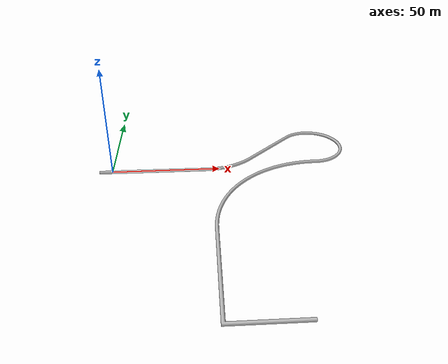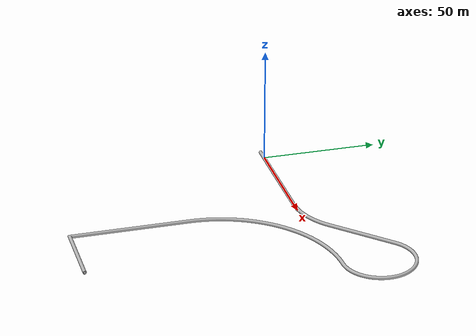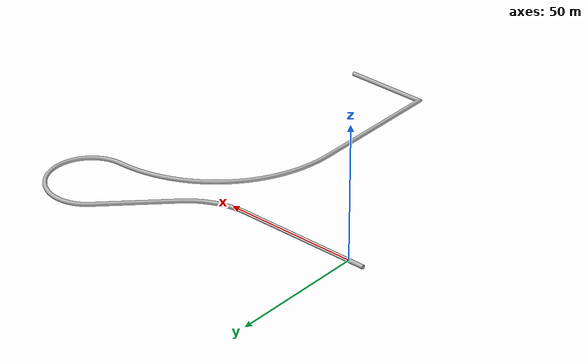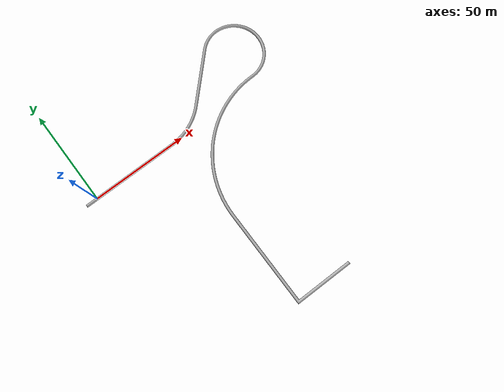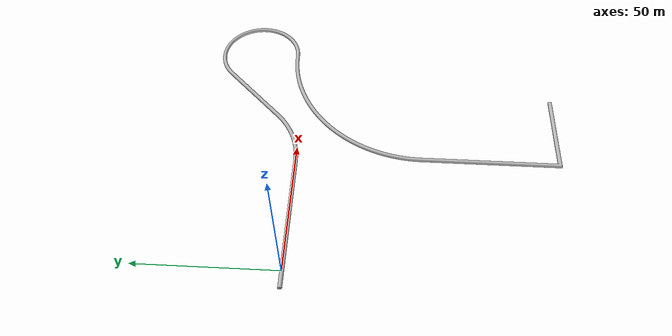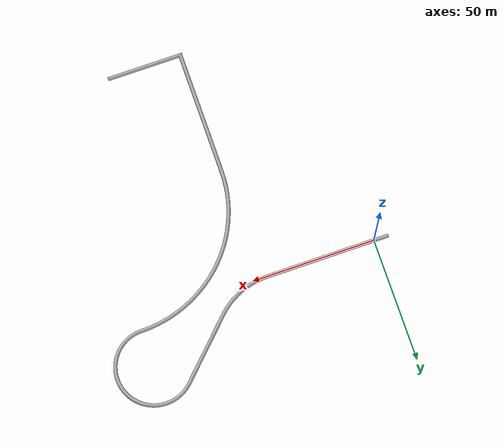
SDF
<?xml version="1.0"?>
<sdf version="1.5">
  <world name="default">
    <include>
      <uri>model://sun</uri>
    </include>
    <include>
      <uri>model://sewage_pipe_700mm</uri>
      <static>true</static>
      <pose>-6 0 -0.05 0 0 0</pose>
    </include>

  </world>
</sdf>

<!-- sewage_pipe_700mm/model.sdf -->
<sdf version="1.6">
    <model name="sewage_pipe_700mm">
      <pose>0 0 0 0 0 0</pose>
      <static>true</static>
      <link name="sewage_pipe_link">
        <collision name="collision_pipe">
          <geometry>
            <mesh>
                <uri>model://sewage_pipe_700mm/meshes/sewage_pipe_700mm.stl</uri>
            </mesh>
          </geometry>
          <surface>
            <friction>
              <ode>
                <mu>100</mu>
                <mu2>50</mu2>
              </ode>
            </friction>
          </surface>
        </collision>
        <visual name="visual_pipe">
          <geometry>
            <mesh>
                <uri>model://sewage_pipe_700mm/meshes/sewage_pipe_700mm.dae</uri>
            </mesh>
          </geometry>
          <material>
          <script>
            <uri>model://sewage_pipe_700mm/materials/scripts</uri>
            <uri>model://sewage_pipe_700mm/materials/textures</uri>
            <name>pipe/concrete</name>
          </script>
        </material>
        </visual>
      </link>
    </model>
</sdf>
